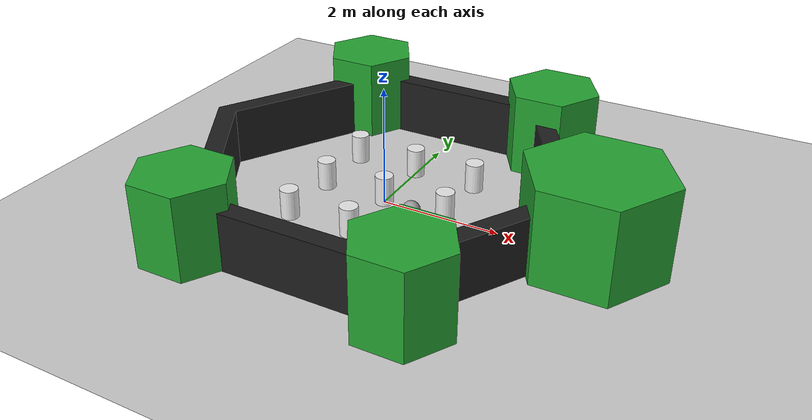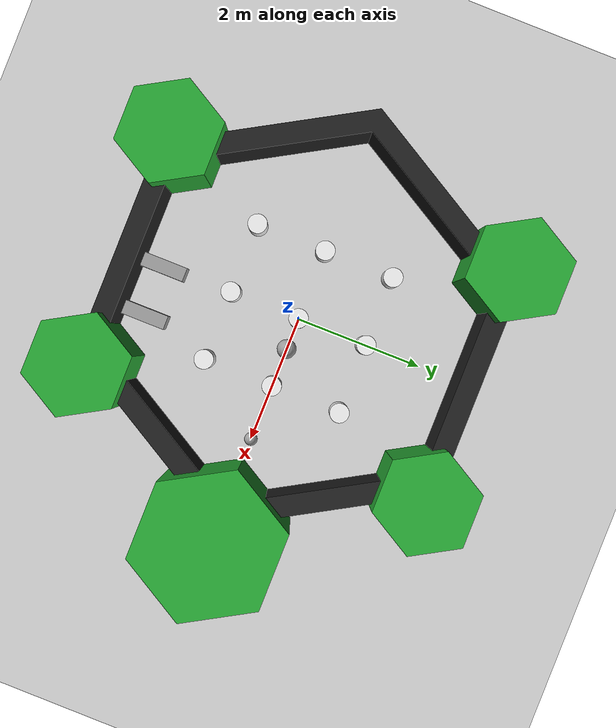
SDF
<sdf version="1.6">
 <world name="default">
  <light name="sun" type="directional">
   <pose>0 0 10 0 -0 0</pose>
   <diffuse>0.8 0.8 0.8 1</diffuse>
   <specular>0.1 0.1 0.1 1</specular>
   <attenuation>
    <range>1000</range>
    <constant>0.9</constant>
    <linear>0.01</linear>
    <quadratic>0.001</quadratic>
   </attenuation>
   <direction>-0.5 0.5 -1</direction>
  </light>
  <model name="ground_plane">
   <static>1</static>
   <link name="link">
    <collision name="collision">
     <geometry><plane><normal>0 0 1</normal><size>100 100</size></plane></geometry>
     <surface><friction><ode><mu>100</mu><mu2>50</mu2></ode></friction></surface>
    </collision>
    <visual name="visual">
     <cast_shadows>0</cast_shadows>
     <geometry><plane><normal>0 0 1</normal><size>100 100</size></plane></geometry>
     <material>
      <script><uri>file://media/materials/scripts/gazebo.material</uri><name>Gazebo/Grey</name></script>
     </material>
    </visual>
   </link>
  </model>
  <physics name="default_physics" default="0" type="ode">
   <real_time_update_rate>1000</real_time_update_rate>
   <max_step_size>0.001</max_step_size>
   <real_time_factor>1</real_time_factor>
   <ode>
    <solver>
     <type>quick</type>
     <iters>150</iters>
     <precon_iters>0</precon_iters>
     <sor>1.4</sor>
     <use_dynamic_moi_rescaling>1</use_dynamic_moi_rescaling>
    </solver>
    <constraints>
     <cfm>1e-05</cfm>
     <erp>0.2</erp>
     <contact_max_correcting_vel>2000</contact_max_correcting_vel>
     <contact_surface_layer>0.01</contact_surface_layer>
    </constraints>
   </ode>
  </physics>
  <model name="ros_symbol">
   <static>1</static>
   <link name="symbol">
    <collision name="one_one">
     <pose>-1.1 -1.1 0.25 0 -0 0</pose>
     <geometry><cylinder><radius>0.15</radius><length>0.5</length></cylinder></geometry>
    </collision>
    <visual name="one_one">
     <pose>-1.1 -1.1 0.25 0 -0 0</pose>
     <geometry><cylinder><radius>0.15</radius><length>0.5</length></cylinder></geometry>
     <material>
      <script><uri>file://media/materials/scripts/gazebo.material</uri><name>Gazebo/White</name></script>
     </material>
    </visual>
    <collision name="one_two">
     <pose>-1.1 0 0.25 0 -0 0</pose>
     <geometry><cylinder><radius>0.15</radius><length>0.5</length></cylinder></geometry>
    </collision>
    <visual name="one_two">
     <pose>-1.1 0 0.25 0 -0 0</pose>
     <geometry><cylinder><radius>0.15</radius><length>0.5</length></cylinder></geometry>
     <material>
      <script><uri>file://media/materials/scripts/gazebo.material</uri><name>Gazebo/White</name></script>
     </material>
    </visual>
    <collision name="one_three">
     <pose>-1.1 1.1 0.25 0 -0 0</pose>
     <geometry><cylinder><radius>0.15</radius><length>0.5</length></cylinder></geometry>
    </collision>
    <visual name="one_three">
     <pose>-1.1 1.1 0.25 0 -0 0</pose>
     <geometry><cylinder><radius>0.15</radius><length>0.5</length></cylinder></geometry>
     <material>
      <script><uri>file://media/materials/scripts/gazebo.material</uri><name>Gazebo/White</name></script>
     </material>
    </visual>
    <collision name="two_one">
     <pose>0 -1.1 0.25 0 -0 0</pose>
     <geometry><cylinder><radius>0.15</radius><length>0.5</length></cylinder></geometry>
    </collision>
    <visual name="two_one">
     <pose>0 -1.1 0.25 0 -0 0</pose>
     <geometry><cylinder><radius>0.15</radius><length>0.5</length></cylinder></geometry>
     <material>
      <script><uri>file://media/materials/scripts/gazebo.material</uri><name>Gazebo/White</name></script>
     </material>
    </visual>
    <collision name="two_two">
     <pose>0 0 0.25 0 -0 0</pose>
     <geometry><cylinder><radius>0.15</radius><length>0.5</length></cylinder></geometry>
    </collision>
    <visual name="two_two">
     <pose>0 0 0.25 0 -0 0</pose>
     <geometry><cylinder><radius>0.15</radius><length>0.5</length></cylinder></geometry>
     <material>
      <script><uri>file://media/materials/scripts/gazebo.material</uri><name>Gazebo/White</name></script>
     </material>
    </visual>
    <collision name="two_three">
     <pose>0 1.1 0.25 0 -0 0</pose>
     <geometry><cylinder><radius>0.15</radius><length>0.5</length></cylinder></geometry>
    </collision>
    <visual name="two_three">
     <pose>0 1.1 0.25 0 -0 0</pose>
     <geometry><cylinder><radius>0.15</radius><length>0.5</length></cylinder></geometry>
     <material>
      <script><uri>file://media/materials/scripts/gazebo.material</uri><name>Gazebo/White</name></script>
     </material>
    </visual>
    <collision name="three_one">
     <pose>1.1 -1.1 0.25 0 -0 0</pose>
     <geometry><cylinder><radius>0.15</radius><length>0.5</length></cylinder></geometry>
    </collision>
    <visual name="three_one">
     <pose>1.1 -1.1 0.25 0 -0 0</pose>
     <geometry><cylinder><radius>0.15</radius><length>0.5</length></cylinder></geometry>
     <material>
      <script><uri>file://media/materials/scripts/gazebo.material</uri><name>Gazebo/White</name></script>
     </material>
    </visual>
    <collision name="three_two">
     <pose>1.1 0 0.25 0 -0 0</pose>
     <geometry><cylinder><radius>0.15</radius><length>0.5</length></cylinder></geometry>
    </collision>
    <visual name="three_two">
     <pose>1.1 0 0.25 0 -0 0</pose>
     <geometry><cylinder><radius>0.15</radius><length>0.5</length></cylinder></geometry>
     <material>
      <script><uri>file://media/materials/scripts/gazebo.material</uri><name>Gazebo/White</name></script>
     </material>
    </visual>
    <collision name="three_three">
     <pose>1.1 1.1 0.25 0 -0 0</pose>
     <geometry><cylinder><radius>0.15</radius><length>0.5</length></cylinder></geometry>
    </collision>
    <visual name="three_three">
     <pose>1.1 1.1 0.25 0 -0 0</pose>
     <geometry><cylinder><radius>0.15</radius><length>0.5</length></cylinder></geometry>
     <material>
      <script><uri>file://media/materials/scripts/gazebo.material</uri><name>Gazebo/White</name></script>
     </material>
    </visual>
    <collision name="head">
     <pose>3.5 0 -0.5 0 -0 0</pose>
     <geometry>
      <mesh><uri>model://turtlebot3_world/meshes/hexagon.dae</uri><scale>0.8 0.8 0.8</scale></mesh>
     </geometry>
    </collision>
    <visual name="head">
     <pose>3.5 0 -0.5 0 -0 0</pose>
     <geometry>
      <mesh><uri>model://turtlebot3_world/meshes/hexagon.dae</uri><scale>0.8 0.8 0.8</scale></mesh>
     </geometry>
     <material>
      <script><uri>file://media/materials/scripts/gazebo.material</uri><name>Gazebo/Green</name></script>
     </material>
    </visual>
    <collision name="left_hand">
     <pose>1.8 2.7 0 0 -0 0</pose>
     <geometry>
      <mesh><uri>model://turtlebot3_world/meshes/hexagon.dae</uri><scale>0.55 0.55 0.55</scale></mesh>
     </geometry>
    </collision>
    <visual name="left_hand">
     <pose>1.8 2.7 0 0 -0 0</pose>
     <geometry>
      <mesh><uri>model://turtlebot3_world/meshes/hexagon.dae</uri><scale>0.55 0.55 0.55</scale></mesh>
     </geometry>
     <material>
      <script><uri>file://media/materials/scripts/gazebo.material</uri><name>Gazebo/Green</name></script>
     </material>
    </visual>
    <collision name="right_hand">
     <pose>1.8 -2.7 0 0 -0 0</pose>
     <geometry>
      <mesh><uri>model://turtlebot3_world/meshes/hexagon.dae</uri><scale>0.55 0.55 0.55</scale></mesh>
     </geometry>
    </collision>
    <visual name="right_hand">
     <pose>1.8 -2.7 0 0 -0 0</pose>
     <geometry>
      <mesh><uri>model://turtlebot3_world/meshes/hexagon.dae</uri><scale>0.55 0.55 0.55</scale></mesh>
     </geometry>
     <material>
      <script><uri>file://media/materials/scripts/gazebo.material</uri><name>Gazebo/Green</name></script>
     </material>
    </visual>
    <collision name="left_foot">
     <pose>-1.8 2.7 0 0 -0 0</pose>
     <geometry>
      <mesh><uri>model://turtlebot3_world/meshes/hexagon.dae</uri><scale>0.55 0.55 0.55</scale></mesh>
     </geometry>
    </collision>
    <visual name="left_foot">
     <pose>-1.8 2.7 0 0 -0 0</pose>
     <geometry>
      <mesh><uri>model://turtlebot3_world/meshes/hexagon.dae</uri><scale>0.55 0.55 0.55</scale></mesh>
     </geometry>
     <material>
      <script><uri>file://media/materials/scripts/gazebo.material</uri><name>Gazebo/Green</name></script>
     </material>
    </visual>
    <collision name="right_foot">
     <pose>-1.8 -2.7 0 0 -0 0</pose>
     <geometry>
      <mesh><uri>model://turtlebot3_world/meshes/hexagon.dae</uri><scale>0.55 0.55 0.55</scale></mesh>
     </geometry>
    </collision>
    <visual name="right_foot">
     <pose>-1.8 -2.7 0 0 -0 0</pose>
     <geometry>
      <mesh><uri>model://turtlebot3_world/meshes/hexagon.dae</uri><scale>0.55 0.55 0.55</scale></mesh>
     </geometry>
     <material>
      <script><uri>file://media/materials/scripts/gazebo.material</uri><name>Gazebo/Green</name></script>
     </material>
    </visual>
    <collision name="body">
     <pose>0 0 -0.3 0 0 -1.5708</pose>
     <geometry>
      <mesh><uri>model://turtlebot3_world/meshes/wall.dae</uri><scale>0.25 0.25 0.25</scale></mesh>
     </geometry>
    </collision>
    <visual name="body">
     <pose>0 0 -0.3 0 0 -1.5708</pose>
     <geometry>
      <mesh><uri>model://turtlebot3_world/meshes/wall.dae</uri><scale>0.25 0.25 0.25</scale></mesh>
     </geometry>
     <material>
      <script><uri>file://media/materials/scripts/gazebo.material</uri><name>Gazebo/FlatBlack</name></script>
     </material>
    </visual>
   </link>
  </model>
  <scene><ambient>0.4 0.4 0.4 1</ambient><background>0.7 0.7 0.7 1</background><shadows>1</shadows></scene>
  <gravity>0 0 -9.8</gravity>
  <magnetic_field>6e-06 2.3e-05 -4.2e-05</magnetic_field>
  <atmosphere type="adiabatic"/>
  <spherical_coordinates>
   <surface_model>EARTH_WGS84</surface_model>
   <latitude_deg>0</latitude_deg>
   <longitude_deg>0</longitude_deg>
   <elevation>0</elevation>
   <heading_deg>0</heading_deg>
  </spherical_coordinates>
  <model name="unit_box">
   <pose>0.806628 -2.19634 0.169737 0 0 -3e-06</pose>
   <link name="link">
    <inertial>
     <mass>1</mass>
     <inertia>
      <ixx>0.166667</ixx>
      <ixy>0</ixy>
      <ixz>0</ixz>
      <iyy>0.166667</iyy>
      <iyz>0</iyz>
      <izz>0.166667</izz>
     </inertia>
    </inertial>
    <collision name="collision">
     <geometry><box><size>0.216185 0.687327 0.339474</size></box></geometry>
    </collision>
    <visual name="visual">
     <geometry><box><size>0.216185 0.687327 0.339474</size></box></geometry>
     <material>
      <script><name>Gazebo/Grey</name><uri>file://media/materials/scripts/gazebo.material</uri></script>
     </material>
    </visual>
   </link>
  </model>
  <model name="unit_box_clone">
   <pose>0.022781 -2.19633 0.169738 0 6e-06 -4e-06</pose>
   <link name="link">
    <inertial>
     <mass>1</mass>
     <inertia>
      <ixx>0.166667</ixx>
      <ixy>0</ixy>
      <ixz>0</ixz>
      <iyy>0.166667</iyy>
      <iyz>0</iyz>
      <izz>0.166667</izz>
     </inertia>
    </inertial>
    <collision name="collision">
     <geometry><box><size>0.216185 0.687327 0.339474</size></box></geometry>
    </collision>
    <visual name="visual">
     <geometry><box><size>0.216185 0.687327 0.339474</size></box></geometry>
     <material>
      <script><name>Gazebo/Grey</name><uri>file://media/materials/scripts/gazebo.material</uri></script>
     </material>
    </visual>
   </link>
  </model>
  <include><uri>model://large_sphere</uri><pose>0.5 0 0 0 0 0</pose></include>
  <include><uri>model://medium_sphere</uri><pose>2 0 0 0 0 0</pose></include>
  <include><uri>model://small_sphere</uri><pose>1 0 0 0 0 0</pose></include>
 </world>
</sdf>

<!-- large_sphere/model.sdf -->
<sdf version='1.6'>
  <model name='large_sphere'>
    <link name='link'>
      <pose frame=''>0 0 0 0 -0 0</pose>
      <inertial>
        <mass>.5</mass>
        <inertia>
          <ixx>0.0045</ixx>
          <ixy>0</ixy>
          <ixz>0</ixz>
          <iyy>0.0045</iyy>
          <iyz>0</iyz>
          <izz>0.0045</izz>
        </inertia>
        <pose frame=''>0 0 0 0 -0 0</pose>
      </inertial>
      <self_collide>0</self_collide>
      <kinematic>0</kinematic>
      <gravity>1</gravity>
      <visual name='visual'>
        <geometry>
          <sphere>
            <radius>0.150493</radius>
          </sphere>
        </geometry>
        <material>
          <script>
            <name>Gazebo/Grey</name>
            <uri>file://media/materials/scripts/gazebo.material</uri>
          </script>
          <shader type='pixel'>
            <normal_map>__default__</normal_map>
          </shader>
          <ambient>0.3 0.3 0.3 1</ambient>
          <diffuse>0.7 0.7 0.7 1</diffuse>
          <specular>0.01 0.01 0.01 1</specular>
          <emissive>0 0 0 1</emissive>
        </material>
        <pose frame=''>0 0 0 0 -0 0</pose>
        <transparency>0</transparency>
        <cast_shadows>1</cast_shadows>
      </visual>
      <collision name='collision'>
        <laser_retro>0</laser_retro>
        <max_contacts>10</max_contacts>
        <pose frame=''>0 0 0 0 -0 0</pose>
        <geometry>
          <sphere>
            <radius>0.150493</radius>
          </sphere>
        </geometry>
        <surface>
          <friction>
            <ode>
              <mu>1</mu>
              <mu2>1</mu2>
              <fdir1>0 0 0</fdir1>
              <slip1>0</slip1>
              <slip2>0</slip2>
            </ode>
            <torsional>
              <coefficient>1</coefficient>
              <patch_radius>0</patch_radius>
              <surface_radius>0</surface_radius>
              <use_patch_radius>1</use_patch_radius>
              <ode>
                <slip>0</slip>
              </ode>
            </torsional>
          </friction>
          <bounce>
            <restitution_coefficient>0</restitution_coefficient>
            <threshold>1e+06</threshold>
          </bounce>
          <contact>
            <collide_without_contact>0</collide_without_contact>
            <collide_without_contact_bitmask>1</collide_without_contact_bitmask>
            <collide_bitmask>1</collide_bitmask>
            <ode>
              <soft_cfm>0</soft_cfm>
              <soft_erp>0.2</soft_erp>
              <kp>1e+6</kp>
              <kd>10</kd>
              <max_vel>0.01</max_vel>
              <min_depth>0</min_depth>
            </ode>
            <bullet>
              <split_impulse>1</split_impulse>
              <split_impulse_penetration_threshold>-0.01</split_impulse_penetration_threshold>
              <soft_cfm>0</soft_cfm>
              <soft_erp>0.2</soft_erp>
              <kp>1e+6</kp>
              <kd>10</kd>
            </bullet>
          </contact>
        </surface>
      </collision>
    </link>
    <static>0</static>
    <allow_auto_disable>1</allow_auto_disable>
  </model>
</sdf>

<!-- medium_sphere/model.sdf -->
<sdf version='1.6'>
  <model name='medium_sphere'>
    <link name='link'>
      <pose frame=''>0 0 0 0 -0 0</pose>
      <inertial>
        <mass>.15</mass>
        <inertia>
          <ixx>0.0006266904</ixx>
          <ixy>0</ixy>
          <ixz>0</ixz>
          <iyy>0.0006266904</iyy>
          <iyz>0</iyz>
          <izz>0.0006266904</izz>
        </inertia>
        <pose frame=''>0 0 0 0 -0 0</pose>
      </inertial>
      <self_collide>0</self_collide>
      <kinematic>0</kinematic>
      <gravity>1</gravity>
      <visual name='visual'>
        <geometry>
          <sphere>
            <radius>0.102223</radius>
          </sphere>
        </geometry>
        <material>
          <script>
            <name>Gazebo/Grey</name>
            <uri>file://media/materials/scripts/gazebo.material</uri>
          </script>
          <shader type='pixel'>
            <normal_map>__default__</normal_map>
          </shader>
          <ambient>0.3 0.3 0.3 1</ambient>
          <diffuse>0.7 0.7 0.7 1</diffuse>
          <specular>0.01 0.01 0.01 1</specular>
          <emissive>0 0 0 1</emissive>
        </material>
        <pose frame=''>0 0 0 0 -0 0</pose>
        <transparency>0</transparency>
        <cast_shadows>1</cast_shadows>
      </visual>
      <collision name='collision'>
        <laser_retro>0</laser_retro>
        <max_contacts>10</max_contacts>
        <pose frame=''>0 0 0 0 -0 0</pose>
        <geometry>
          <sphere>
            <radius>0.102223</radius>
          </sphere>
        </geometry>
        <surface>
          <friction>
            <ode>
              <mu>1</mu>
              <mu2>1</mu2>
              <fdir1>0 0 0</fdir1>
              <slip1>0</slip1>
              <slip2>0</slip2>
            </ode>
            <torsional>
              <coefficient>1</coefficient>
              <patch_radius>0</patch_radius>
              <surface_radius>0</surface_radius>
              <use_patch_radius>1</use_patch_radius>
              <ode>
                <slip>0</slip>
              </ode>
            </torsional>
          </friction>
          <bounce>
            <restitution_coefficient>0</restitution_coefficient>
            <threshold>1e+06</threshold>
          </bounce>
          <contact>
            <collide_without_contact>0</collide_without_contact>
            <collide_without_contact_bitmask>1</collide_without_contact_bitmask>
            <collide_bitmask>1</collide_bitmask>
            <ode>
              <soft_cfm>0</soft_cfm>
              <soft_erp>0.2</soft_erp>
              <kp>1e+13</kp>
              <kd>1</kd>
              <max_vel>0.01</max_vel>
              <min_depth>0</min_depth>
            </ode>
            <bullet>
              <split_impulse>1</split_impulse>
              <split_impulse_penetration_threshold>-0.01</split_impulse_penetration_threshold>
              <soft_cfm>0</soft_cfm>
              <soft_erp>0.2</soft_erp>
              <kp>1e+13</kp>
              <kd>1</kd>
            </bullet>
          </contact>
        </surface>
      </collision>
    </link>
    <static>0</static>
    <allow_auto_disable>1</allow_auto_disable>
  </model>
</sdf>

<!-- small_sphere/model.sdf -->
<sdf version='1.6'>
  <model name='small_sphere'>
    <link name='link'>
      <pose frame=''>0 0 0 0 -0 0</pose>
      <inertial>
        <mass>.01</mass>
        <inertia>
          <ixx>0.000000835</ixx>
          <ixy>0</ixy>
          <ixz>0</ixz>
          <iyy>0.000000835</iyy>
          <iyz>0</iyz>
          <izz>0.000000835</izz>
        </inertia>
        <pose frame=''>0 0 0 0 -0 0</pose>
      </inertial>
      <self_collide>0</self_collide>
      <kinematic>0</kinematic>
      <gravity>1</gravity>
      <visual name='visual'>
        <geometry>
          <sphere>
            <radius>0.0457157</radius>
          </sphere>
        </geometry>
        <material>
          <script>
            <name>Gazebo/Grey</name>
            <uri>file://media/materials/scripts/gazebo.material</uri>
          </script>
          <shader type='pixel'>
            <normal_map>__default__</normal_map>
          </shader>
          <ambient>0.3 0.3 0.3 1</ambient>
          <diffuse>0.7 0.7 0.7 1</diffuse>
          <specular>0.01 0.01 0.01 1</specular>
          <emissive>0 0 0 1</emissive>
        </material>
        <pose frame=''>0 0 0 0 -0 0</pose>
        <transparency>0</transparency>
        <cast_shadows>1</cast_shadows>
      </visual>
      <collision name='collision'>
        <laser_retro>0</laser_retro>
        <max_contacts>10</max_contacts>
        <pose frame=''>0 0 0 0 -0 0</pose>
        <geometry>
          <sphere>
            <radius>0.045716</radius>
          </sphere>
        </geometry>
        <surface>
          <friction>
            <ode>
              <mu>1</mu>
              <mu2>1</mu2>
              <fdir1>0 0 0</fdir1>
              <slip1>0</slip1>
              <slip2>0</slip2>
            </ode>
            <torsional>
              <coefficient>1</coefficient>
              <patch_radius>0</patch_radius>
              <surface_radius>0</surface_radius>
              <use_patch_radius>1</use_patch_radius>
              <ode>
                <slip>0</slip>
              </ode>
            </torsional>
          </friction>
          <bounce>
            <restitution_coefficient>0</restitution_coefficient>
            <threshold>1e+06</threshold>
          </bounce>
          <contact>
            <collide_without_contact>0</collide_without_contact>
            <collide_without_contact_bitmask>1</collide_without_contact_bitmask>
            <collide_bitmask>1</collide_bitmask>
            <ode>
              <soft_cfm>0</soft_cfm>
              <soft_erp>0.2</soft_erp>
              <kp>1e+13</kp>
              <kd>1</kd>
              <max_vel>0.01</max_vel>
              <min_depth>0</min_depth>
            </ode>
            <bullet>
              <split_impulse>1</split_impulse>
              <split_impulse_penetration_threshold>-0.01</split_impulse_penetration_threshold>
              <soft_cfm>0</soft_cfm>
              <soft_erp>0.2</soft_erp>
              <kp>1e+13</kp>
              <kd>1</kd>
            </bullet>
          </contact>
        </surface>
      </collision>
    </link>
    <static>0</static>
    <allow_auto_disable>1</allow_auto_disable>
  </model>
</sdf>
